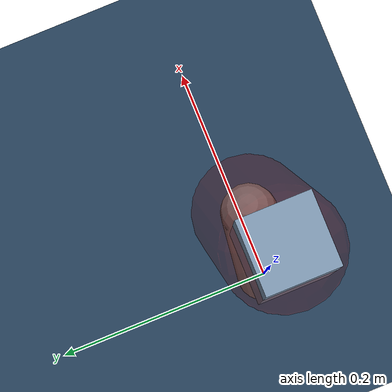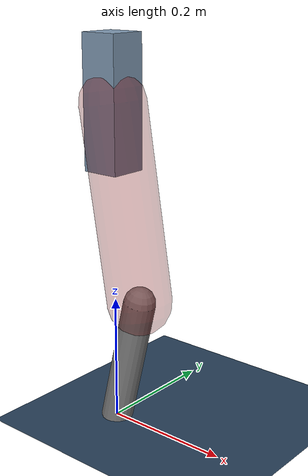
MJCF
<mujoco model="Hopper2D">
	<compiler inertiafromgeom="true" angle="radian" />
	<option timestep="0.001" integrator="implicit" cone="elliptic" solver="Newton" tolerance="1e-10" />

	<default>
		<geom contype="1" conaffinity="1" condim="3" friction="2 0.005 0.0001" solref="0.005 1" />
		<joint limited="true" damping="0.1" />
	</default>

	<asset>
		<texture name="skybox" type="skybox" builtin="gradient" rgb1=".4 .6 .8" rgb2="0 0 0" width="800" height="800" />
		<texture name="grid" type="2d" builtin="checker" rgb1=".1 .2 .3" rgb2=".2 .3 .4" width="300" height="300" mark="edge" markrgb=".2 .3 .4" />
		<material name="ground" texture="grid" texrepeat="1 1" texuniform="true" reflectance="0.1" />
		<material name="leg" rgba="0.5 0.6 0.7 1" />
	</asset>

	<worldbody>

		<geom name="floor" type="plane" size="5 5 0.25" material="ground" />

		<light directional="false" diffuse="0.8 0.8 0.8" specular="0.3 0.3 0.3" pos="0 0 2" dir="0 0 -1" />
		<light mode="targetbodycom" target="base" directional="false" diffuse="0.8 0.8 0.8" specular="0.3 0.3 0.3" pos="0 0 2" dir="0 0 -1" />

		<camera name="fixed" pos="0 -2 1" xyaxes="1 0 0 0 0 1" />
		<camera name="tracking" mode="trackcom" pos="0 -3 1" />

		<body name="root" pos="0 0 0.5048499527240268">
			<joint name="slide_x" type="slide" axis="1 0 0" range="-100 100" />
			<joint name="slide_z" type="slide" axis="0 0 1" range="0 10" />

			<body name="base" pos="0 0 0">
				<geom name="torso" type="box" size="0.03 0.03 0.1" mass="2.35" material="leg" />

				<body name="link1" pos="0 0 0" euler="0 1.4053559943550624 0">
					<joint type="hinge" axis="0 -1 0" pos="0 0 0" name="hinge1" limited="true" range="-3.14 3.14" stiffness="0" damping="0.1" />
					<geom name="thigh" type="capsule" fromto="0 0 0 0.3018068258161331 0 0" size="0.05" rgba="0.5 0 0 0.3" mass="0.9935784297035594" />

					<body name="link2" pos="0.3018068258161331 0 0" euler="0 0.4009131798683375 0">
						<joint type="hinge" axis="0 -1 0" pos="0 0 0" name="hinge2" limited="true" range="-3.14 3.14" stiffness="0" damping="0.1" />
						<geom name="shank" type="capsule" fromto="0 0 0 0.21304312690789368 0 0" size="0.025" mass="0.41183881421710433" />

					</body>
				</body>
			</body>
		</body>
	</worldbody>

	<actuator>
		<motor name="torque1" joint="hinge1" ctrlrange="-81.35933355429879 81.35933355429879" ctrllimited="true" gear="1" />
		<motor name="torque2" joint="hinge2" ctrlrange="-85.85874508530915 85.85874508530915" ctrllimited="true" gear="1" />
	</actuator>
</mujoco>
